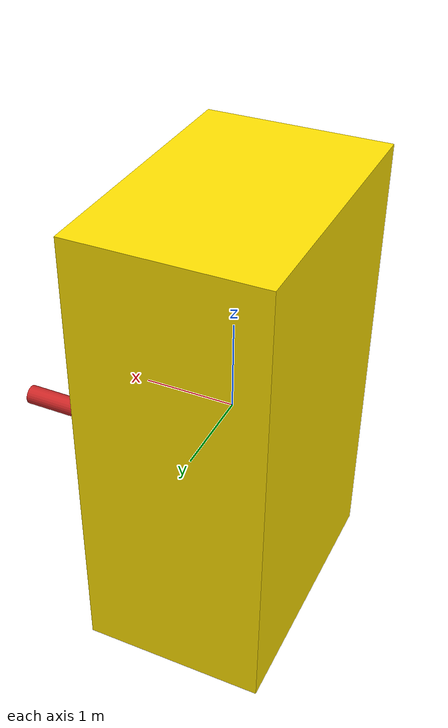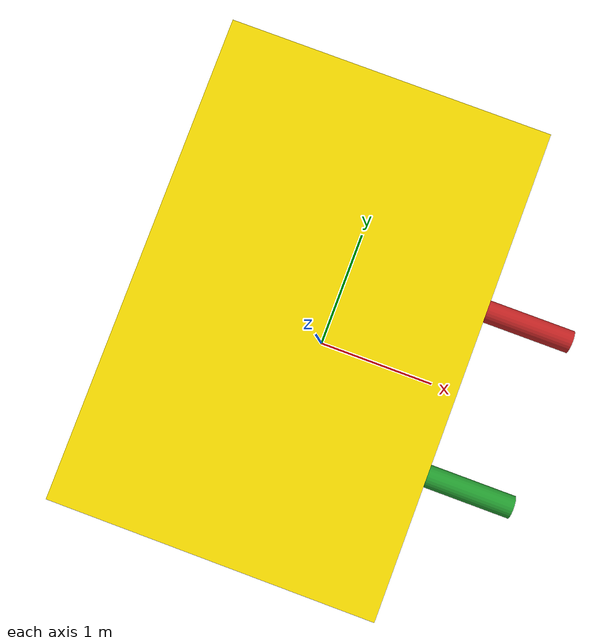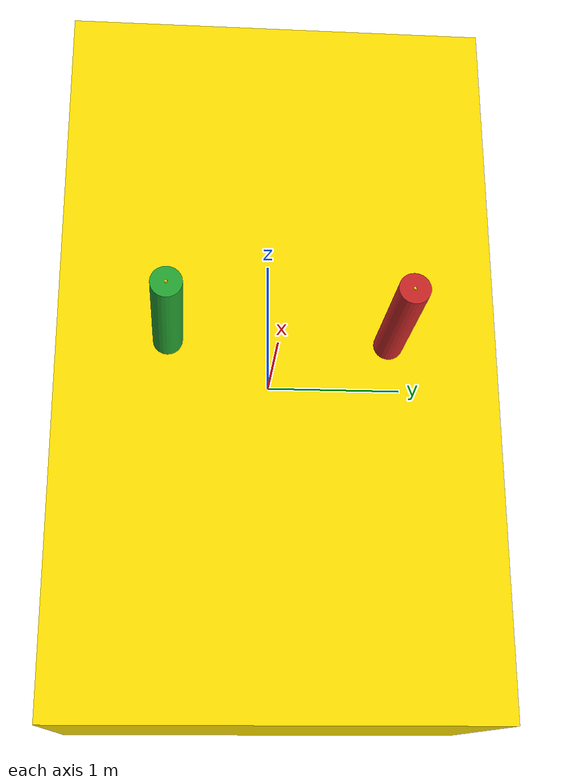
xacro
<?xml version="1.0"?>
<robot xmlns:xacro="http://ros.org/wiki/xacro"
  name="mimic_joint_gazebo_tutorial">

  <!-- - - - - - - - - - - Conventions - - - - - - - - - - -->

  <!-- length is front to back (x-axis) -->
  <!-- width goes left to right (y-axis) -->
  <!-- height is up down (z-axis) -->

  <!-- reflection convention -->
  <!--
  front +1
  back  -1
  left  +1
  right -1
  -->

  <!-- - - - - - - - - - - Parameters - - - - - - - - - - -->

  <xacro:property name="bar_upper_limit" value="${pi/4}"/>
  <xacro:property name="bar_lower_limit" value="0"/>
  <xacro:property name="bar_effort" value="1000000"/>
  <xacro:property name="bar_velocity" value="100"/>

  <!-- - - - - - - - - - - Measurements - - - - - - - - - - -->

  <!-- body -->
  <xacro:property name="body_length" value="2"/>
  <xacro:property name="body_width" value="3"/>
  <xacro:property name="body_height" value="5"/>
  <xacro:property name="body_mass" value="500"/>

  <xacro:property name="bar_length" value="1"/>
  <xacro:property name="bar_radius" value="0.1"/>
  <xacro:property name="bar_mass" value="0.5"/>

  <!-- - - - - - - - - - - Inertia Macros - - - - - - - - - - -->

  <!-- Null -->
  <xacro:macro name="null_inertial">
    <inertial>
      <mass value="0.0001"/>
      <inertia ixx="0.00001" ixy="0" ixz="0" iyy="0.00001" iyz="0" izz="0.00001"/>
    </inertial>
  </xacro:macro>

  <!-- solid cuboid -->
  <xacro:macro name="solid_cuboid_inertial"
               params="length width height mass *origin">
    <inertial>
      <xacro:insert_block name="origin"/>
      <mass value="${mass}"/>
      <inertia ixx="${mass * (width * width + height * height) / 12}"
               ixy="0" ixz="0"
               iyy="${mass * (length * length + height * height) / 12}"
               iyz="0"
               izz="${mass * (length * length + width * width) / 12}"/>
    </inertial>
  </xacro:macro>

  <!-- thick-walled cylindrical tube with open ends -->
  <xacro:macro name="thick_walled_tube_inertial"
               params="inner_rad outer_rad height mass">
    <inertial>
      <mass value="${mass}"/>
      <inertia ixx="${(1 / 12) * mass * (3 * (inner_rad * inner_rad +
                    outer_rad * outer_rad) + height * height)}"
               ixy="0" ixz="0"
               iyy="${(1 / 12) * mass * (3 * (inner_rad * inner_rad +
                    outer_rad * outer_rad) + height * height)}"
               iyz="0"
               izz="${mass * (inner_rad * inner_rad +
                    outer_rad * outer_rad) / 2}"/>
    </inertial>
  </xacro:macro>

  <!-- - - - - - - - - - - colors - - - - - - - - - - -->

  <xacro:property name="material_yellow">
    <material name="yellow">
      <color rgba="${255/255} ${226/255} ${0/255} 1"/>
    </material>
  </xacro:property>

  <xacro:property name="material_green">
    <material name="green">
      <color rgba="0 1 0 1"/>
    </material>
  </xacro:property>

  <xacro:property name="material_red">
    <material name="red">
      <color rgba="1 0 0 1"/>
    </material>
  </xacro:property>

  <!-- - - - - - - - - - - gazebo plugins - - - - - - - - - - -->

  <xacro:macro name="mimic_joint_plugin_gazebo" params="name_prefix parent_joint mimic_joint has_pid:=false multiplier:=1.0 offset:=0 sensitiveness:=0.0 max_effort:=1.0 robot_namespace:=''">
    <gazebo>
      <plugin name="${name_prefix}mimic_joint_plugin" filename="libroboticsgroup_gazebo_mimic_joint_plugin.so">
        <joint>${parent_joint}</joint>
        <mimicJoint>${mimic_joint}</mimicJoint>
        <xacro:if value="${has_pid}">                     <!-- if set to true, PID parameters from "/gazebo_ros_control/pid_gains/${mimic_joint}" are loaded -->
          <hasPID />
        </xacro:if>
        <multiplier>${multiplier}</multiplier>
        <offset>${offset}</offset>
        <sensitiveness>${sensitiveness}</sensitiveness>   <!-- if absolute difference between setpoint and process value is below this threshold, do nothing; 0.0 = disable [rad] -->
        <maxEffort>${max_effort}</maxEffort>              <!-- only taken into account if has_pid:=true [Nm] -->
        <xacro:unless value="${robot_namespace == ''}">
          <robotNamespace>($robot_namespace)</robotNamespace>
        </xacro:unless>
      </plugin>
    </gazebo>
  </xacro:macro>

  <xacro:mimic_joint_plugin_gazebo name_prefix="mimic_joint"
    parent_joint="right_joint" mimic_joint="right_tip_joint"
    has_pid="false" multiplier="${-1.0}" max_effort="1" />

  <xacro:mimic_joint_plugin_gazebo name_prefix="mimic_joint"
    parent_joint="left_joint" mimic_joint="left_tip_joint"
    has_pid="false" multiplier="${-1.0}" max_effort="1" />

  <xacro:macro name="controller_plugin_gazebo" params="robot_namespace:=''">
    <gazebo>
      <plugin name="gazebo_ros_control" filename="libgazebo_ros_control.so">
        <xacro:unless value="${robot_namespace == ''}">
          <robotNamespace>($robot_namespace)</robotNamespace>
        </xacro:unless>
        <controlPeriod>0.001</controlPeriod>
      </plugin>
    </gazebo>
  </xacro:macro>
  <controller_plugin_gazebo />

  <gazebo reference="right_bar">
    <material>Gazebo/Green</material>
  </gazebo>

  <gazebo reference="left_bar">
    <material>Gazebo/Red</material>
  </gazebo>

  <!-- - - - - - - - - - - base_link - - - - - - - - - - -->

  <link name="base_link" />

  <!-- body-->
  <link name="body">
    <visual>
      <origin xyz="0 0 0" />
      <geometry>
        <box size="${body_length} ${body_width} ${body_height}" />
      </geometry>
      <xacro:insert_block name="material_yellow" />
    </visual>
    <collision>
      <origin xyz="0 0 0" />
      <geometry>
        <box size="${body_length} ${body_width} ${body_height}" />
      </geometry>
    </collision>
    <xacro:solid_cuboid_inertial
        length="${body_length}" width="${body_width}"
        height="${body_height}" mass="${body_mass}">
      <origin xyz="0 0 0"/>
    </xacro:solid_cuboid_inertial>
  </link>
  <joint name="body_to_base" type="fixed">
    <origin xyz="0.0 0.0 0.0" />
    <parent link="base_link" />
    <child link="body" />
  </joint>
  <gazebo reference="body">
    <material>Gazebo/Yellow</material>
  </gazebo>

  <!-- bar macro -->
  <xacro:macro name="bar" params="lr_prefix lr_reflect">
    <link name="${lr_prefix}_bar">
      <visual>
        <origin xyz="0 0 ${bar_length/2}"/>
        <geometry>
          <cylinder length="${bar_length}" radius="${bar_radius}"/>
        </geometry>
      </visual>
      <collision>
        <geometry>
          <cylinder length="${bar_length}" radius="${bar_radius}"/>
        </geometry>
      </collision>
      <xacro:thick_walled_tube_inertial
        inner_rad="0.0" outer_rad="${bar_radius}"
        height="${bar_length}" mass="${bar_mass}"/>
    </link>
    <joint name="${lr_prefix}_joint" type="revolute">
      <origin xyz="${body_length/2} ${lr_reflect*body_width/4} 0.0" rpy="0 ${pi/2} 0" />
      <parent link="body" />
      <child link="${lr_prefix}_bar" />
      <axis xyz="0 1 0" />
      <limit lower="0" upper="${pi / 2}" velocity="0.7" effort="1000" />
      <dynamics damping="0.02" friction="0.1" />
    </joint>
    <transmission name="${lr_prefix}_trans">
      <type>transmission_interface/SimpleTransmission</type>
      <joint name="${lr_prefix}_joint">
        <hardwareInterface>hardware_interface/PositionJointInterface</hardwareInterface>
      </joint>
      <actuator name="${lr_prefix}_motor">
        <mechanicalReduction>1</mechanicalReduction>
      </actuator>
    </transmission>
  </xacro:macro>

  <!-- tip sensor -->
  <xacro:macro name="tip" params="lr_prefix">
    <link name="${lr_prefix}_tip">
      <visual>
        <origin xyz="0 0 0" rpy="0 0 0"/>
        <geometry>
          <sphere radius="0.01"/>
        </geometry>
        <xacro:insert_block name="material_yellow" />
      </visual>
      <xacro:null_inertial/>
    </link>
    <joint name="${lr_prefix}_tip_joint" type="revolute">
      <parent link="${lr_prefix}_bar"/>
      <child link="${lr_prefix}_tip"/>
      <origin xyz="0 0 ${body_length/2}" rpy="0 0 0"/>
      <axis xyz="0 1 0" />
      <limit lower="${-pi}" upper="${pi}" velocity="0.35" effort="1" />
      <mimic joint="${lr_prefix}_joint" multiplier="1" offset="0" />
      <dynamics damping="0.2" friction="0.1" />
    </joint>
  </xacro:macro>

  <!-- tip sensor -->
  <xacro:macro name="tip_sensor" params="lr_prefix">
    <gazebo reference="${lr_prefix}_tip">
      <sensor type="ray" name="${lr_prefix}_tip_sensor">
          <update_rate>30</update_rate>
          <visualize>true</visualize>
          <topic>/${lr_prefix}_tip_sensor/height_above_ground</topic>
          <ray>
            <scan>
                <horizontal>
                  <samples>1</samples>
                  <resolution>1.0</resolution>
                  <min_angle>-0.01</min_angle>
                  <max_angle>0.01</max_angle>
                </horizontal>
                <vertical>
                  <samples>1</samples>
                  <resolution>1</resolution>
                  <min_angle>-0.01</min_angle>
                  <max_angle>0.01</max_angle>
                </vertical>
            </scan>
            <range>
                <min>0.01</min>
                <max>3.75</max>
                <resolution>0.02</resolution>
            </range>
          </ray>
        <plugin filename="libgazebo_ros_range.so" name="gazebo_ros_range">
          <gaussianNoise>0.005</gaussianNoise>
          <updateRate>5</updateRate>
          <topicName>/${lr_prefix}_tip_sensor/height_above_ground</topicName>
          <frameName>${lr_prefix}_tip</frameName>
          <radiation>infrared</radiation>
          <fov>0.02</fov>
        </plugin>
      </sensor>
    </gazebo>
  </xacro:macro>

  <!-- right bar -->
  <xacro:bar lr_prefix="right" lr_reflect="-1"/>
  <xacro:tip lr_prefix="right"/>
  <xacro:tip_sensor lr_prefix="right"/>

  <!-- left bar -->
  <xacro:bar lr_prefix="left" lr_reflect="1"/>
  <xacro:tip lr_prefix="left"/>
  <xacro:tip_sensor lr_prefix="left"/>

</robot>
